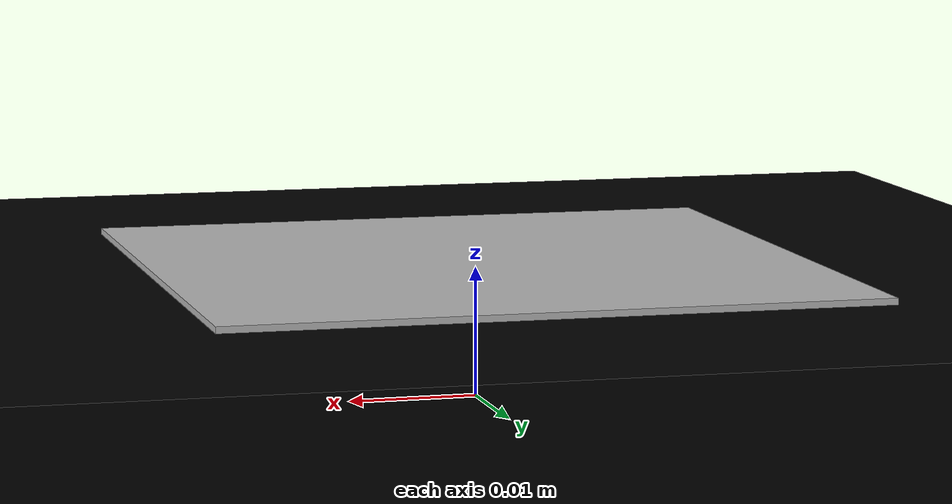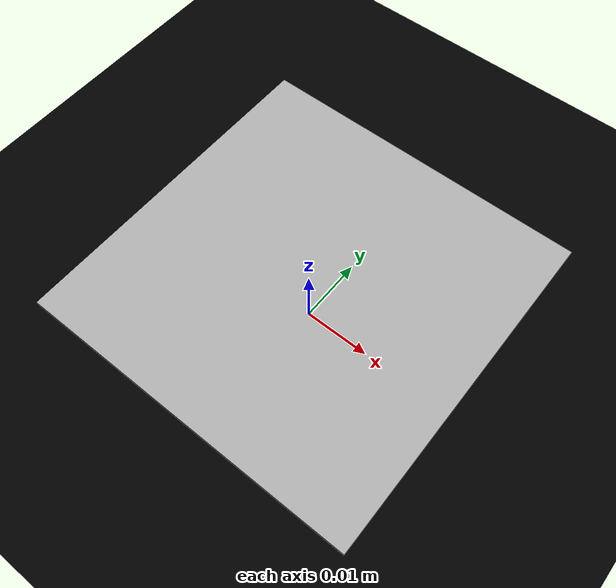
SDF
<?xml version="1.0" ?>
<sdf version="1.5">
    <model name="qr_id6">
    <static>true</static>
    <pose>0 0 0 0 0 0</pose>

    <link name="base">
      <collision name="collision">
        <geometry>

          <mesh>
            <uri>model://qr_base/meshes/qr_base.dae</uri>
          </mesh>
        </geometry>
      </collision>
      <visual name="visual">
        <geometry>
          <mesh>
            <uri>model://qr_base/meshes/qr_base.dae</uri>
          </mesh>
        </geometry>
        <cast_shadows>false</cast_shadows>
      </visual>
    </link>

		<joint name="base_marker_joint" type="fixed">
			<parent>base</parent>
			<child>id6_25cm</child>
		</joint>

		<link name="id6">
    	<pose>0 0 0.01 0 0 1.57</pose>
      <collision name="collision">
        <geometry>
          <mesh>
            <uri>model://id6/meshes/id6.dae</uri>
          </mesh>
        </geometry>
      </collision>
      <visual name="visual">
        <geometry>
          <mesh>
            <uri>model://id6/meshes/id6.dae</uri>
          </mesh>
        </geometry>
        <cast_shadows>false</cast_shadows>
      </visual>
    </link>

  </model>
</sdf>
